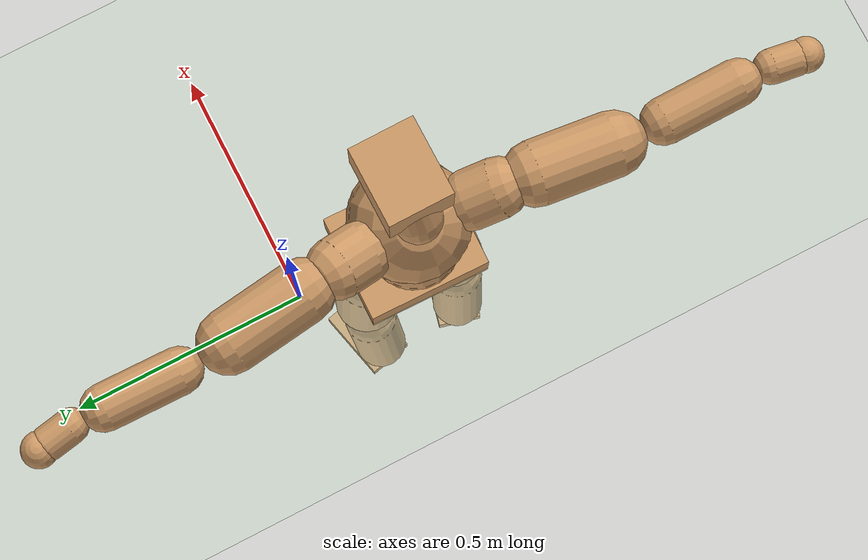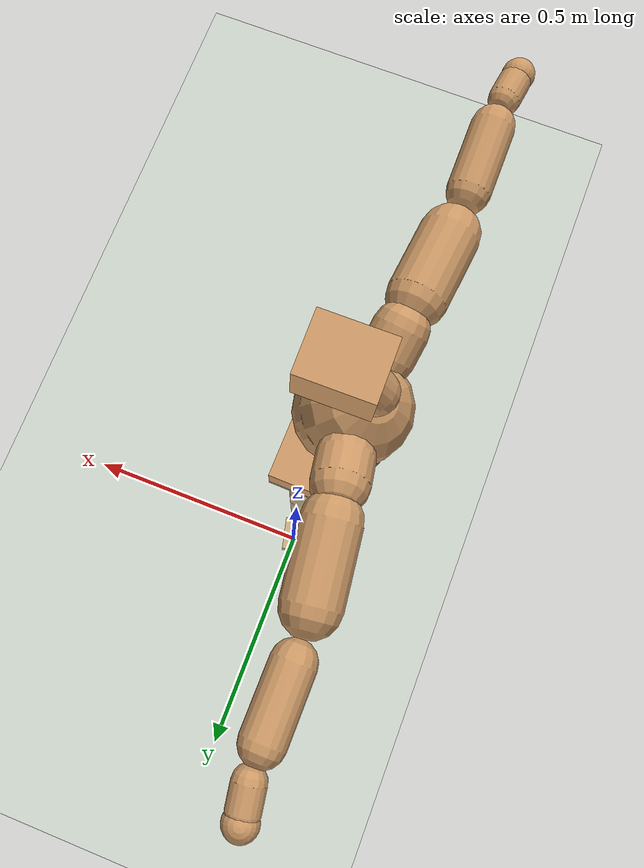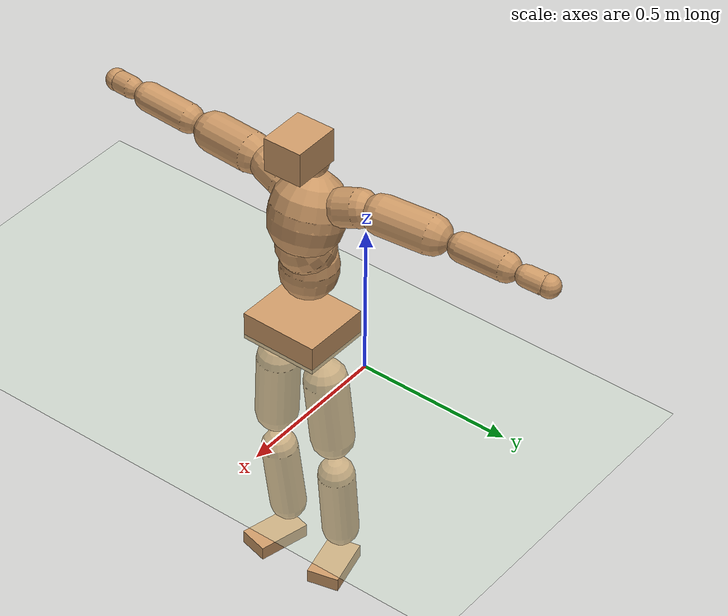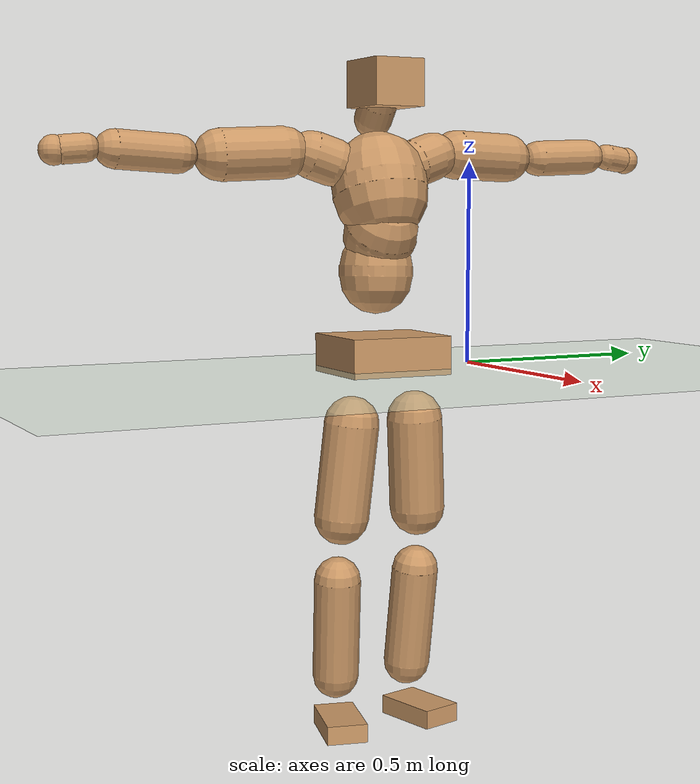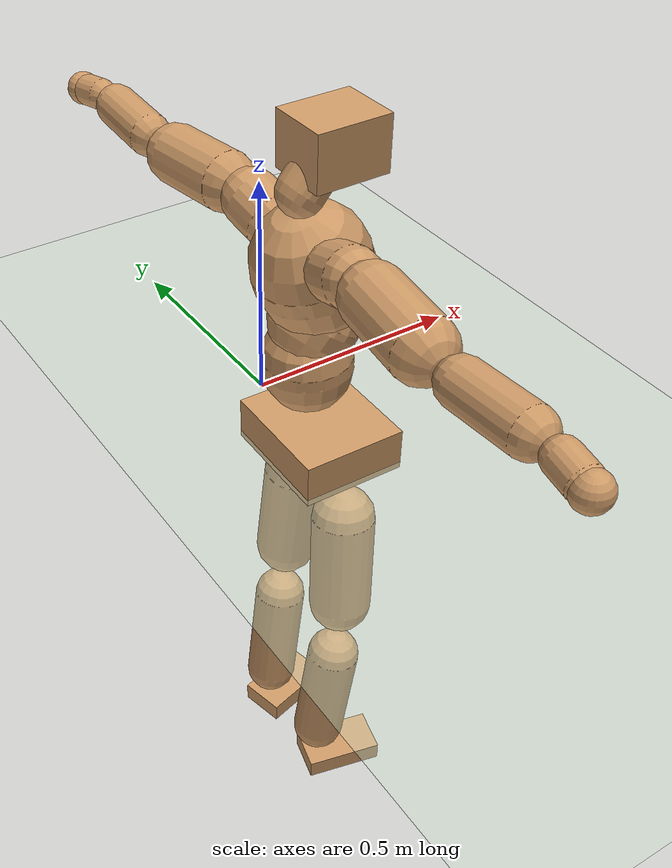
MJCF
<mujoco model="humanoid">
  <compiler coordinate="local" angle="radian"/>
  <default>
    <joint damping="0.0" armature="0.01" stiffness="0.0" limited="true"/>
    <geom conaffinity="1" condim="3" contype="7" margin="0.001" rgba="0.8 0.6 .4 1"/>
  </default>
  <asset>
    <texture type="skybox" builtin="gradient" rgb1=".4 .5 .6" rgb2="0 0 0" width="100" height="100"/>
    <texture builtin="flat" height="1278" mark="cross" markrgb="1 1 1" name="texgeom" random="0.01" rgb1="0.8 0.6 0.4" rgb2="0.8 0.6 0.4" type="cube" width="127"/>
    <texture builtin="checker" height="100" name="texplane" rgb1="0 0 0" rgb2="0.8 0.8 0.8" type="2d" width="100"/>
    <material name="MatPlane" reflectance="0.5" shininess="1" specular="1" texrepeat="60 60" texture="texplane"/>
    <material name="geom" texture="texgeom" texuniform="true"/>
  </asset>
  <worldbody>
    <light cutoff="100" diffuse="1 1 1" dir="-0 0 -1.3" directional="true" exponent="1" pos="0 0 1.3" specular=".1 .1 .1"/>
    <geom conaffinity="1" condim="3" name="floor" pos="0 0 0" rgba="0.8 0.9 0.8 1" size="100 100 .2" type="plane" material="MatPlane"/>
    <body name="Pelvis" pos="-0.0015 -0.2388 0.0452">
      <freejoint name="Pelvis"/>
      <geom type="box" contype="1" conaffinity="1" density="500" pos="-0.0053 0.0001 -0.0145" size="0.113 0.1302 0.0473" quat="1.0000 0.0000 0.0000 -0.0074" name="Pelvis"/>
      <body name="L_Hip" pos="0.001 0.0839 -0.1026">
        <joint name="L_Hip_x" type="hinge" pos="0 0 0" axis="1 0 0" stiffness="800" damping="80" armature="0.02" range="-180.0000 180.0000"/>
        <joint name="L_Hip_y" type="hinge" pos="0 0 0" axis="0 1 0" stiffness="800" damping="80" armature="0.02" range="-180.0000 180.0000"/>
        <joint name="L_Hip_z" type="hinge" pos="0 0 0" axis="0 0 1" stiffness="800" damping="80" armature="0.02" range="-180.0000 180.0000"/>
        <geom type="capsule" contype="1" conaffinity="1" density="500" fromto="-0.0047 0.0052 -0.0771 -0.0187 0.0208 -0.3085" size="0.069" name="L_Hip"/>
        <body name="L_Knee" pos="-0.0234 0.026 -0.3856">
          <joint name="L_Knee_x" type="hinge" pos="0 0 0" axis="1 0 0" stiffness="800" damping="80" armature="0.02" range="-180.0000 180.0000"/>
          <joint name="L_Knee_y" type="hinge" pos="0 0 0" axis="0 1 0" stiffness="800" damping="80" armature="0.02" range="-180.0000 180.0000"/>
          <joint name="L_Knee_z" type="hinge" pos="0 0 0" axis="0 0 1" stiffness="800" damping="80" armature="0.02" range="-180.0000 180.0000"/>
          <geom type="capsule" contype="1" conaffinity="1" density="500" fromto="-0.0105 -0.0024 -0.0838 -0.0419 -0.0094 -0.3352" size="0.0584" name="L_Knee"/>
          <body name="L_Ankle" pos="-0.0524 -0.0118 -0.419">
            <joint name="L_Ankle_x" type="hinge" pos="0 0 0" axis="1 0 0" stiffness="800" damping="80" armature="0.02" range="-180.0000 180.0000"/>
            <joint name="L_Ankle_y" type="hinge" pos="0 0 0" axis="0 1 0" stiffness="800" damping="80" armature="0.02" range="-180.0000 180.0000"/>
            <joint name="L_Ankle_z" type="hinge" pos="0 0 0" axis="0 0 1" stiffness="800" damping="80" armature="0.02" range="-180.0000 180.0000"/>
            <geom type="box" contype="1" conaffinity="1" density="500" pos="0.0598 0.0145 -0.0304" size="0.0852 0.0521 0.0232" quat="0.9929 0.0000 0.0000 0.1186" name="L_Ankle"/>
            <body name="L_Toe" pos="0.1197 0.029 -0.0607">
              <joint name="L_Toe_x" type="hinge" pos="0 0 0" axis="1 0 0" stiffness="500" damping="50" armature="0.02" range="-180.0000 180.0000"/>
              <joint name="L_Toe_y" type="hinge" pos="0 0 0" axis="0 1 0" stiffness="500" damping="50" armature="0.02" range="-180.0000 180.0000"/>
              <joint name="L_Toe_z" type="hinge" pos="0 0 0" axis="0 0 1" stiffness="500" damping="50" armature="0.02" range="-180.0000 180.0000"/>
              <geom type="box" contype="1" conaffinity="1" density="500" pos="0.0000 0.0000 0.0303" size="0.0011 0.0026 0.0012" quat="0.9922 0.0000 0.0000 0.1244" name="L_Toe"/>
            </body>
          </body>
        </body>
      </body>
      <body name="R_Hip" pos="0.005 -0.0808 -0.1045">
        <joint name="R_Hip_x" type="hinge" pos="0 0 0" axis="1 0 0" stiffness="800" damping="80" armature="0.02" range="-180.0000 180.0000"/>
        <joint name="R_Hip_y" type="hinge" pos="0 0 0" axis="0 1 0" stiffness="800" damping="80" armature="0.02" range="-180.0000 180.0000"/>
        <joint name="R_Hip_z" type="hinge" pos="0 0 0" axis="0 0 1" stiffness="800" damping="80" armature="0.02" range="-180.0000 180.0000"/>
        <geom type="capsule" contype="1" conaffinity="1" density="500" fromto="-0.0049 -0.0071 -0.0779 -0.0197 -0.0282 -0.3115" size="0.068" name="R_Hip"/>
        <body name="R_Knee" pos="-0.0246 -0.0353 -0.3893">
          <joint name="R_Knee_x" type="hinge" pos="0 0 0" axis="1 0 0" stiffness="800" damping="80" armature="0.02" range="-180.0000 180.0000"/>
          <joint name="R_Knee_y" type="hinge" pos="0 0 0" axis="0 1 0" stiffness="800" damping="80" armature="0.02" range="-180.0000 180.0000"/>
          <joint name="R_Knee_z" type="hinge" pos="0 0 0" axis="0 0 1" stiffness="800" damping="80" armature="0.02" range="-180.0000 180.0000"/>
          <geom type="capsule" contype="1" conaffinity="1" density="500" fromto="-0.0101 0.0028 -0.0840 -0.0404 0.0111 -0.3361" size="0.0582" name="R_Knee"/>
          <body name="R_Ankle" pos="-0.0505 0.0138 -0.4202">
            <joint name="R_Ankle_x" type="hinge" pos="0 0 0" axis="1 0 0" stiffness="800" damping="80" armature="0.02" range="-180.0000 180.0000"/>
            <joint name="R_Ankle_y" type="hinge" pos="0 0 0" axis="0 1 0" stiffness="800" damping="80" armature="0.02" range="-180.0000 180.0000"/>
            <joint name="R_Ankle_z" type="hinge" pos="0 0 0" axis="0 0 1" stiffness="800" damping="80" armature="0.02" range="-180.0000 180.0000"/>
            <geom type="box" contype="1" conaffinity="1" density="500" pos="0.0623 -0.0152 -0.0263" size="0.0876 0.0504 0.0231" quat="0.9929 0.0000 0.0000 -0.1191" name="R_Ankle"/>
            <body name="R_Toe" pos="0.1247 -0.0304 -0.0526">
              <joint name="R_Toe_x" type="hinge" pos="0 0 0" axis="1 0 0" stiffness="500" damping="50" armature="0.02" range="-180.0000 180.0000"/>
              <joint name="R_Toe_y" type="hinge" pos="0 0 0" axis="0 1 0" stiffness="500" damping="50" armature="0.02" range="-180.0000 180.0000"/>
              <joint name="R_Toe_z" type="hinge" pos="0 0 0" axis="0 0 1" stiffness="500" damping="50" armature="0.02" range="-180.0000 180.0000"/>
              <geom type="box" contype="1" conaffinity="1" density="500" pos="0.0000 0.0000 0.0280" size="0.0011 0.0025 0.0012" quat="0.9939 0.0000 0.0000 -0.1099" name="R_Toe"/>
            </body>
          </body>
        </body>
      </body>
      <body name="Torso" pos="-0.0377 -0.0026 0.1204">
        <joint name="Torso_x" type="hinge" pos="0 0 0" axis="1 0 0" stiffness="1000" damping="100" armature="0.02" range="-180.0000 180.0000"/>
        <joint name="Torso_y" type="hinge" pos="0 0 0" axis="0 1 0" stiffness="1000" damping="100" armature="0.02" range="-180.0000 180.0000"/>
        <joint name="Torso_z" type="hinge" pos="0 0 0" axis="0 0 1" stiffness="1000" damping="100" armature="0.02" range="-180.0000 180.0000"/>
        <geom type="capsule" contype="1" conaffinity="1" density="500" fromto="-0.0028 0.0024 0.0790 -0.0019 0.0016 0.0526" size="0.0913" name="Torso"/>
        <body name="Spine" pos="-0.0047 0.004 0.1316">
          <joint name="Spine_x" type="hinge" pos="0 0 0" axis="1 0 0" stiffness="1000" damping="100" armature="0.02" range="-180.0000 180.0000"/>
          <joint name="Spine_y" type="hinge" pos="0 0 0" axis="0 1 0" stiffness="1000" damping="100" armature="0.02" range="-180.0000 180.0000"/>
          <joint name="Spine_z" type="hinge" pos="0 0 0" axis="0 0 1" stiffness="1000" damping="100" armature="0.02" range="-180.0000 180.0000"/>
          <geom type="capsule" contype="1" conaffinity="1" density="500" fromto="0.0251 0.0012 0.0328 0.0168 0.0008 0.0219" size="0.0911" name="Spine"/>
          <body name="Chest" pos="0.0419 0.0021 0.0547">
            <joint name="Chest_x" type="hinge" pos="0 0 0" axis="1 0 0" stiffness="1000" damping="100" armature="0.02" range="-180.0000 180.0000"/>
            <joint name="Chest_y" type="hinge" pos="0 0 0" axis="0 1 0" stiffness="1000" damping="100" armature="0.02" range="-180.0000 180.0000"/>
            <joint name="Chest_z" type="hinge" pos="0 0 0" axis="0 0 1" stiffness="1000" damping="100" armature="0.02" range="-180.0000 180.0000"/>
            <geom type="capsule" contype="1" conaffinity="1" density="500" fromto="-0.0338 -0.0004 0.1020 -0.0225 -0.0003 0.0680" size="0.1179" name="Chest"/>
            <body name="Neck" pos="-0.0699 -0.0016 0.2376">
              <joint name="Neck_x" type="hinge" pos="0 0 0" axis="1 0 0" stiffness="500" damping="50" armature="0.02" range="-180.0000 180.0000"/>
              <joint name="Neck_y" type="hinge" pos="0 0 0" axis="0 1 0" stiffness="500" damping="50" armature="0.02" range="-180.0000 180.0000"/>
              <joint name="Neck_z" type="hinge" pos="0 0 0" axis="0 0 1" stiffness="500" damping="50" armature="0.02" range="-180.0000 180.0000"/>
              <geom type="capsule" contype="1" conaffinity="1" density="500" fromto="0.0101 -0.0003 0.0122 0.0404 -0.0012 0.0489" size="0.0467" name="Neck"/>
              <body name="Head" pos="0.0505 -0.0015 0.0612">
                <joint name="Head_x" type="hinge" pos="0 0 0" axis="1 0 0" stiffness="500" damping="50" armature="0.02" range="-180.0000 180.0000"/>
                <joint name="Head_y" type="hinge" pos="0 0 0" axis="0 1 0" stiffness="500" damping="50" armature="0.02" range="-180.0000 180.0000"/>
                <joint name="Head_z" type="hinge" pos="0 0 0" axis="0 0 1" stiffness="500" damping="50" armature="0.02" range="-180.0000 180.0000"/>
                <geom type="box" contype="1" conaffinity="1" density="500" pos="0.0262 0.0003 0.0316" size="0.0779 0.0643 0.0563" quat="1.0000 0.0000 0.0000 0.0051" name="Head"/>
              </body>
            </body>
            <body name="L_Thorax" pos="-0.0474 0.0899 0.1368">
              <joint name="L_Thorax_x" type="hinge" pos="0 0 0" axis="1 0 0" stiffness="500" damping="50" armature="0.02" range="-180.0000 180.0000"/>
              <joint name="L_Thorax_y" type="hinge" pos="0 0 0" axis="0 1 0" stiffness="500" damping="50" armature="0.02" range="-180.0000 180.0000"/>
              <joint name="L_Thorax_z" type="hinge" pos="0 0 0" axis="0 0 1" stiffness="500" damping="50" armature="0.02" range="-180.0000 180.0000"/>
              <geom type="capsule" contype="1" conaffinity="1" density="500" fromto="-0.0030 0.0188 0.0064 -0.0118 0.0750 0.0254" size="0.0594" name="L_Thorax"/>
              <body name="L_Shoulder" pos="-0.0148 0.0938 0.0318">
                <joint name="L_Shoulder_x" type="hinge" pos="0 0 0" axis="1 0 0" stiffness="500" damping="50" armature="0.02" range="-720.0000 720.0000"/>
                <joint name="L_Shoulder_y" type="hinge" pos="0 0 0" axis="0 1 0" stiffness="500" damping="50" armature="0.02" range="-720.0000 720.0000"/>
                <joint name="L_Shoulder_z" type="hinge" pos="0 0 0" axis="0 0 1" stiffness="500" damping="50" armature="0.02" range="-720.0000 720.0000"/>
                <geom type="capsule" contype="1" conaffinity="1" density="500" fromto="-0.0069 0.0535 -0.0016 -0.0275 0.2141 -0.0064" size="0.062" name="L_Shoulder"/>
                <body name="L_Elbow" pos="-0.0344 0.2677 -0.008">
                  <joint name="L_Elbow_x" type="hinge" pos="0 0 0" axis="1 0 0" stiffness="500" damping="50" armature="0.02" range="-720.0000 720.0000"/>
                  <joint name="L_Elbow_y" type="hinge" pos="0 0 0" axis="0 1 0" stiffness="500" damping="50" armature="0.02" range="-720.0000 720.0000"/>
                  <joint name="L_Elbow_z" type="hinge" pos="0 0 0" axis="0 0 1" stiffness="500" damping="50" armature="0.02" range="-720.0000 720.0000"/>
                  <geom type="capsule" contype="1" conaffinity="1" density="500" fromto="0.0005 0.0498 0.0021 0.0019 0.1990 0.0085" size="0.0455" name="L_Elbow"/>
                  <body name="L_Wrist" pos="0.0024 0.2488 0.0106">
                    <joint name="L_Wrist_x" type="hinge" pos="0 0 0" axis="1 0 0" stiffness="300" damping="30" armature="0.02" range="-180.0000 180.0000"/>
                    <joint name="L_Wrist_y" type="hinge" pos="0 0 0" axis="0 1 0" stiffness="300" damping="30" armature="0.02" range="-180.0000 180.0000"/>
                    <joint name="L_Wrist_z" type="hinge" pos="0 0 0" axis="0 0 1" stiffness="300" damping="30" armature="0.02" range="-180.0000 180.0000"/>
                    <geom type="capsule" contype="1" conaffinity="1" density="500" fromto="-0.0028 0.0175 -0.0020 -0.0113 0.0698 -0.0082" size="0.0336" name="L_Wrist"/>
                    <body name="L_Hand" pos="-0.0142 0.0873 -0.0102">
                      <joint name="L_Hand_x" type="hinge" pos="0 0 0" axis="1 0 0" stiffness="300" damping="30" armature="0.02" range="-180.0000 180.0000"/>
                      <joint name="L_Hand_y" type="hinge" pos="0 0 0" axis="0 1 0" stiffness="300" damping="30" armature="0.02" range="-180.0000 180.0000"/>
                      <joint name="L_Hand_z" type="hinge" pos="0 0 0" axis="0 0 1" stiffness="300" damping="30" armature="0.02" range="-180.0000 180.0000"/>
                      <geom type="sphere" contype="1" conaffinity="1" density="500" size="0.0354" pos="0.0000 0.0000 0.0000" name="L_Hand"/>
                    </body>
                  </body>
                </body>
              </body>
            </body>
            <body name="R_Thorax" pos="-0.0515 -0.0904 0.1355">
              <joint name="R_Thorax_x" type="hinge" pos="0 0 0" axis="1 0 0" stiffness="500" damping="50" armature="0.02" range="-180.0000 180.0000"/>
              <joint name="R_Thorax_y" type="hinge" pos="0 0 0" axis="0 1 0" stiffness="500" damping="50" armature="0.02" range="-180.0000 180.0000"/>
              <joint name="R_Thorax_z" type="hinge" pos="0 0 0" axis="0 0 1" stiffness="500" damping="50" armature="0.02" range="-180.0000 180.0000"/>
              <geom type="capsule" contype="1" conaffinity="1" density="500" fromto="-0.0025 -0.0191 0.0066 -0.0100 -0.0765 0.0263" size="0.0584" name="R_Thorax"/>
              <body name="R_Shoulder" pos="-0.0125 -0.0956 0.0329">
                <joint name="R_Shoulder_x" type="hinge" pos="0 0 0" axis="1 0 0" stiffness="500" damping="50" armature="0.02" range="-720.0000 720.0000"/>
                <joint name="R_Shoulder_y" type="hinge" pos="0 0 0" axis="0 1 0" stiffness="500" damping="50" armature="0.02" range="-720.0000 720.0000"/>
                <joint name="R_Shoulder_z" type="hinge" pos="0 0 0" axis="0 0 1" stiffness="500" damping="50" armature="0.02" range="-720.0000 720.0000"/>
                <geom type="capsule" contype="1" conaffinity="1" density="500" fromto="-0.0052 -0.0517 -0.0024 -0.0210 -0.2067 -0.0098" size="0.0633" name="R_Shoulder"/>
                <body name="R_Elbow" pos="-0.0262 -0.2584 -0.0122">
                  <joint name="R_Elbow_x" type="hinge" pos="0 0 0" axis="1 0 0" stiffness="500" damping="50" armature="0.02" range="-720.0000 720.0000"/>
                  <joint name="R_Elbow_y" type="hinge" pos="0 0 0" axis="0 1 0" stiffness="500" damping="50" armature="0.02" range="-720.0000 720.0000"/>
                  <joint name="R_Elbow_z" type="hinge" pos="0 0 0" axis="0 0 1" stiffness="500" damping="50" armature="0.02" range="-720.0000 720.0000"/>
                  <geom type="capsule" contype="1" conaffinity="1" density="500" fromto="0.0002 -0.0509 0.0031 0.0010 -0.2037 0.0122" size="0.046" name="R_Elbow"/>
                  <body name="R_Wrist" pos="0.0012 -0.2546 0.0153">
                    <joint name="R_Wrist_x" type="hinge" pos="0 0 0" axis="1 0 0" stiffness="300" damping="30" armature="0.02" range="-180.0000 180.0000"/>
                    <joint name="R_Wrist_y" type="hinge" pos="0 0 0" axis="0 1 0" stiffness="300" damping="30" armature="0.02" range="-180.0000 180.0000"/>
                    <joint name="R_Wrist_z" type="hinge" pos="0 0 0" axis="0 0 1" stiffness="300" damping="30" armature="0.02" range="-180.0000 180.0000"/>
                    <geom type="capsule" contype="1" conaffinity="1" density="500" fromto="-0.0023 -0.0173 -0.0015 -0.0091 -0.0692 -0.0061" size="0.0339" name="R_Wrist"/>
                    <body name="R_Hand" pos="-0.0114 -0.0865 -0.0076">
                      <joint name="R_Hand_x" type="hinge" pos="0 0 0" axis="1 0 0" stiffness="300" damping="30" armature="0.02" range="-180.0000 180.0000"/>
                      <joint name="R_Hand_y" type="hinge" pos="0 0 0" axis="0 1 0" stiffness="300" damping="30" armature="0.02" range="-180.0000 180.0000"/>
                      <joint name="R_Hand_z" type="hinge" pos="0 0 0" axis="0 0 1" stiffness="300" damping="30" armature="0.02" range="-180.0000 180.0000"/>
                      <geom type="sphere" contype="1" conaffinity="1" density="500" size="0.0350" pos="0.0000 0.0000 0.0000" name="R_Hand"/>
                    </body>
                  </body>
                </body>
              </body>
            </body>
          </body>
        </body>
      </body>
    </body>
  </worldbody>
  <actuator>
    <motor name="L_Hip_x" joint="L_Hip_x" gear="500"/>
    <motor name="L_Hip_y" joint="L_Hip_y" gear="500"/>
    <motor name="L_Hip_z" joint="L_Hip_z" gear="500"/>
    <motor name="L_Knee_x" joint="L_Knee_x" gear="500"/>
    <motor name="L_Knee_y" joint="L_Knee_y" gear="500"/>
    <motor name="L_Knee_z" joint="L_Knee_z" gear="500"/>
    <motor name="L_Ankle_x" joint="L_Ankle_x" gear="500"/>
    <motor name="L_Ankle_y" joint="L_Ankle_y" gear="500"/>
    <motor name="L_Ankle_z" joint="L_Ankle_z" gear="500"/>
    <motor name="L_Toe_x" joint="L_Toe_x" gear="500"/>
    <motor name="L_Toe_y" joint="L_Toe_y" gear="500"/>
    <motor name="L_Toe_z" joint="L_Toe_z" gear="500"/>
    <motor name="R_Hip_x" joint="R_Hip_x" gear="500"/>
    <motor name="R_Hip_y" joint="R_Hip_y" gear="500"/>
    <motor name="R_Hip_z" joint="R_Hip_z" gear="500"/>
    <motor name="R_Knee_x" joint="R_Knee_x" gear="500"/>
    <motor name="R_Knee_y" joint="R_Knee_y" gear="500"/>
    <motor name="R_Knee_z" joint="R_Knee_z" gear="500"/>
    <motor name="R_Ankle_x" joint="R_Ankle_x" gear="500"/>
    <motor name="R_Ankle_y" joint="R_Ankle_y" gear="500"/>
    <motor name="R_Ankle_z" joint="R_Ankle_z" gear="500"/>
    <motor name="R_Toe_x" joint="R_Toe_x" gear="500"/>
    <motor name="R_Toe_y" joint="R_Toe_y" gear="500"/>
    <motor name="R_Toe_z" joint="R_Toe_z" gear="500"/>
    <motor name="Torso_x" joint="Torso_x" gear="500"/>
    <motor name="Torso_y" joint="Torso_y" gear="500"/>
    <motor name="Torso_z" joint="Torso_z" gear="500"/>
    <motor name="Spine_x" joint="Spine_x" gear="500"/>
    <motor name="Spine_y" joint="Spine_y" gear="500"/>
    <motor name="Spine_z" joint="Spine_z" gear="500"/>
    <motor name="Chest_x" joint="Chest_x" gear="500"/>
    <motor name="Chest_y" joint="Chest_y" gear="500"/>
    <motor name="Chest_z" joint="Chest_z" gear="500"/>
    <motor name="Neck_x" joint="Neck_x" gear="500"/>
    <motor name="Neck_y" joint="Neck_y" gear="500"/>
    <motor name="Neck_z" joint="Neck_z" gear="500"/>
    <motor name="Head_x" joint="Head_x" gear="500"/>
    <motor name="Head_y" joint="Head_y" gear="500"/>
    <motor name="Head_z" joint="Head_z" gear="500"/>
    <motor name="L_Thorax_x" joint="L_Thorax_x" gear="500"/>
    <motor name="L_Thorax_y" joint="L_Thorax_y" gear="500"/>
    <motor name="L_Thorax_z" joint="L_Thorax_z" gear="500"/>
    <motor name="L_Shoulder_x" joint="L_Shoulder_x" gear="500"/>
    <motor name="L_Shoulder_y" joint="L_Shoulder_y" gear="500"/>
    <motor name="L_Shoulder_z" joint="L_Shoulder_z" gear="500"/>
    <motor name="L_Elbow_x" joint="L_Elbow_x" gear="500"/>
    <motor name="L_Elbow_y" joint="L_Elbow_y" gear="500"/>
    <motor name="L_Elbow_z" joint="L_Elbow_z" gear="500"/>
    <motor name="L_Wrist_x" joint="L_Wrist_x" gear="500"/>
    <motor name="L_Wrist_y" joint="L_Wrist_y" gear="500"/>
    <motor name="L_Wrist_z" joint="L_Wrist_z" gear="500"/>
    <motor name="L_Hand_x" joint="L_Hand_x" gear="500"/>
    <motor name="L_Hand_y" joint="L_Hand_y" gear="500"/>
    <motor name="L_Hand_z" joint="L_Hand_z" gear="500"/>
    <motor name="R_Thorax_x" joint="R_Thorax_x" gear="500"/>
    <motor name="R_Thorax_y" joint="R_Thorax_y" gear="500"/>
    <motor name="R_Thorax_z" joint="R_Thorax_z" gear="500"/>
    <motor name="R_Shoulder_x" joint="R_Shoulder_x" gear="500"/>
    <motor name="R_Shoulder_y" joint="R_Shoulder_y" gear="500"/>
    <motor name="R_Shoulder_z" joint="R_Shoulder_z" gear="500"/>
    <motor name="R_Elbow_x" joint="R_Elbow_x" gear="500"/>
    <motor name="R_Elbow_y" joint="R_Elbow_y" gear="500"/>
    <motor name="R_Elbow_z" joint="R_Elbow_z" gear="500"/>
    <motor name="R_Wrist_x" joint="R_Wrist_x" gear="500"/>
    <motor name="R_Wrist_y" joint="R_Wrist_y" gear="500"/>
    <motor name="R_Wrist_z" joint="R_Wrist_z" gear="500"/>
    <motor name="R_Hand_x" joint="R_Hand_x" gear="500"/>
    <motor name="R_Hand_y" joint="R_Hand_y" gear="500"/>
    <motor name="R_Hand_z" joint="R_Hand_z" gear="500"/>
  </actuator>
  <contact>
    <exclude body1="Torso" body2="Chest"/>
    <exclude body1="Head" body2="Chest"/>
    <exclude body1="R_Knee" body2="R_Toe"/>
    <exclude body1="R_Knee" body2="L_Ankle"/>
    <exclude body1="R_Knee" body2="L_Toe"/>
    <exclude body1="L_Knee" body2="L_Toe"/>
    <exclude body1="L_Knee" body2="R_Ankle"/>
    <exclude body1="L_Knee" body2="R_Toe"/>
    <exclude body1="L_Shoulder" body2="Chest"/>
    <exclude body1="R_Shoulder" body2="Chest"/>
  </contact>
  <sensor/>
  <size njmax="700" nconmax="700"/>
</mujoco>
